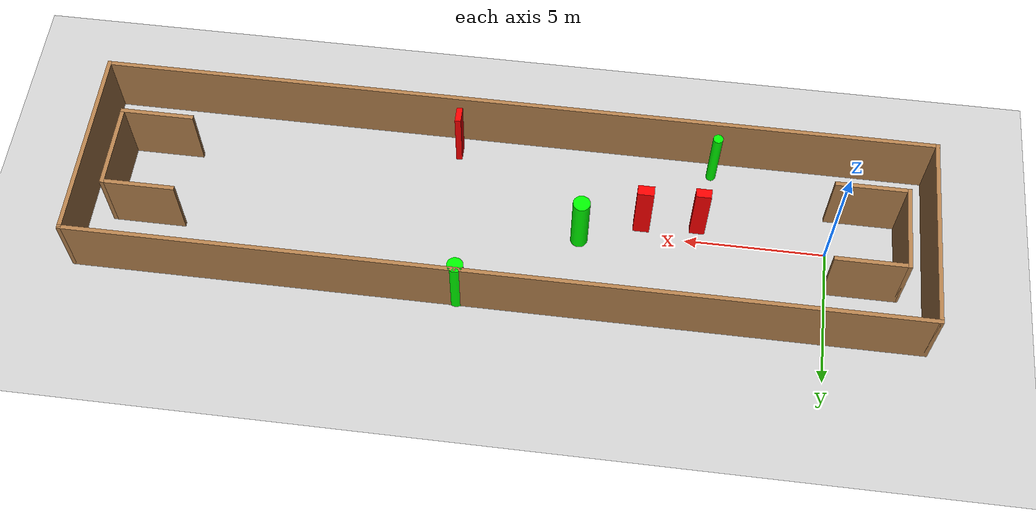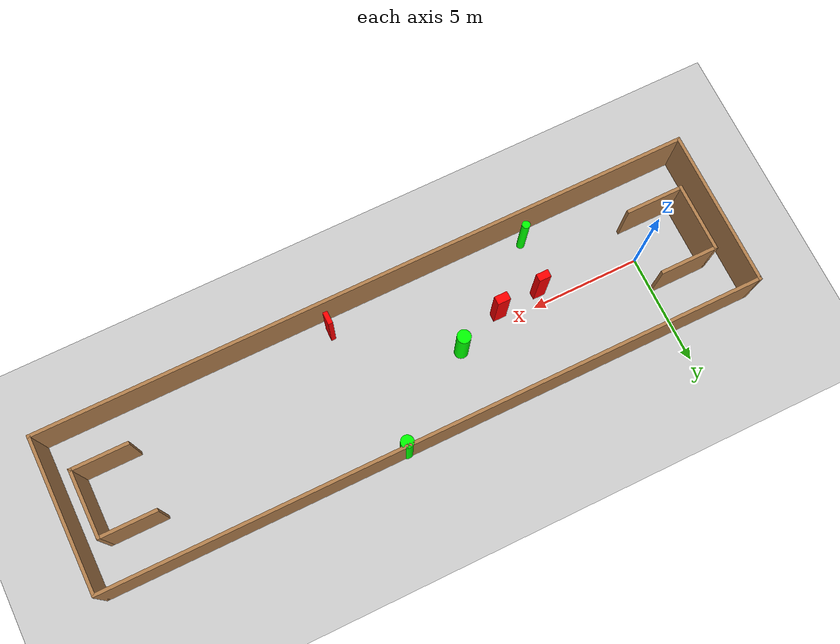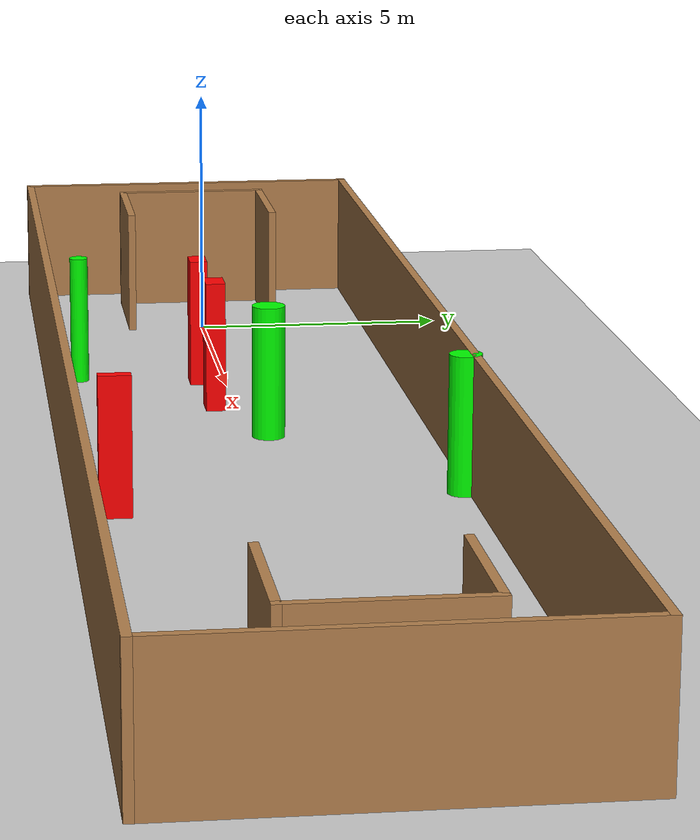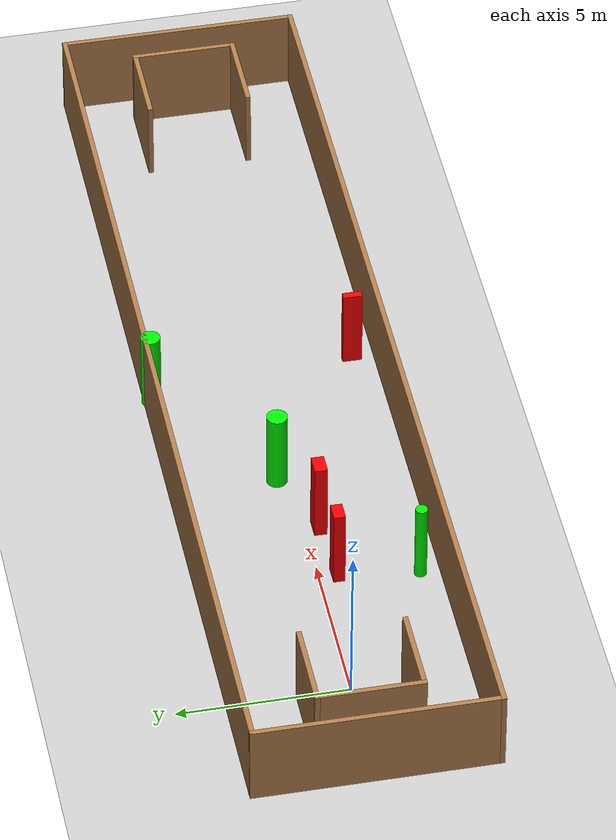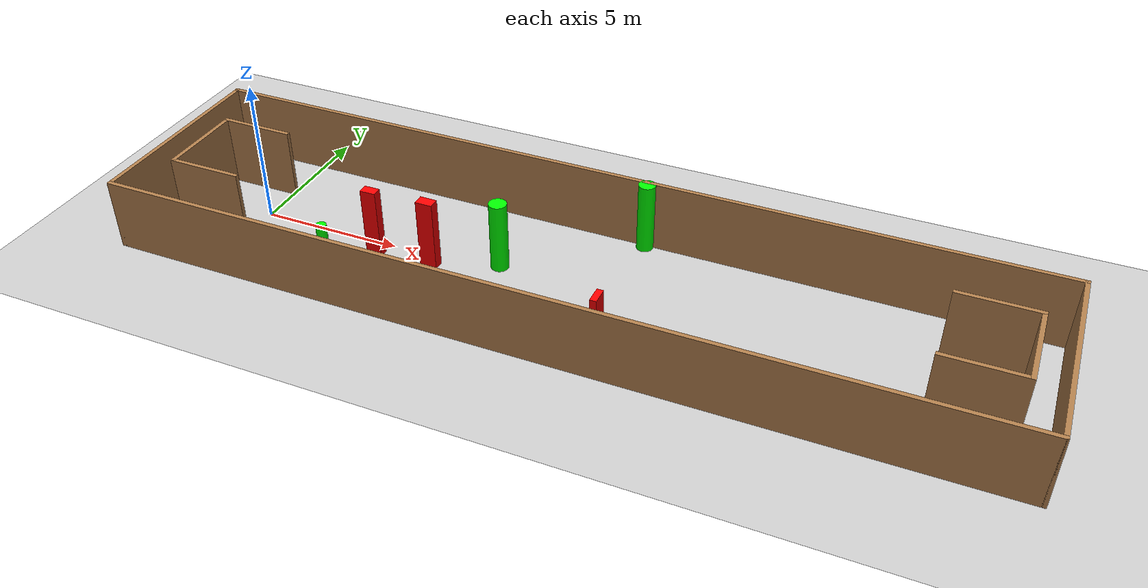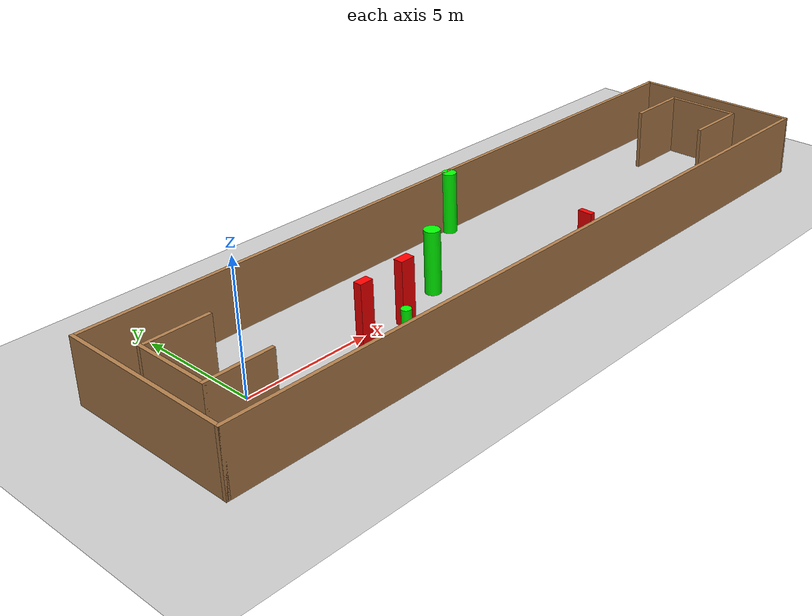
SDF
<sdf version="1.7">
 <world name="default">
  <light name="sun" type="directional">
   <pose>0 0 10 0 -0 0</pose>
   <diffuse>0.8 0.8 0.8 1</diffuse>
   <specular>0.2 0.2 0.2 1</specular>
   <attenuation>
    <range>1000</range>
    <constant>0.9</constant>
    <linear>0.01</linear>
    <quadratic>0.001</quadratic>
   </attenuation>
   <direction>-0.5 0.1 -0.9</direction>
   <spot><inner_angle>0</inner_angle><outer_angle>0</outer_angle><falloff>0</falloff></spot>
  </light>
  <model name="ground_plane">
   <static>1</static>
   <link name="link">
    <collision name="collision">
     <geometry><plane><normal>0 0 1</normal><size>100 100</size></plane></geometry>
     <surface>
      <contact><collide_bitmask>65535</collide_bitmask></contact>
      <friction><ode><mu>100</mu><mu2>50</mu2></ode></friction>
     </surface>
    </collision>
    <visual name="visual">
     <cast_shadows>0</cast_shadows>
     <geometry><plane><normal>0 0 1</normal><size>100 100</size></plane></geometry>
     <material>
      <script><uri>file://media/materials/scripts/gazebo.material</uri><name>Gazebo/Grey</name></script>
     </material>
    </visual>
   </link>
  </model>
  <gravity>0 0 -9.8</gravity>
  <magnetic_field>6e-06 2.3e-05 -4.2e-05</magnetic_field>
  <atmosphere type="adiabatic"/>
  <physics type="ode">
   <max_step_size>0.001</max_step_size>
   <real_time_factor>1</real_time_factor>
   <real_time_update_rate>1000</real_time_update_rate>
  </physics>
  <scene><ambient>0.4 0.4 0.4 1</ambient><background>0.7 0.7 0.7 1</background><shadows>1</shadows></scene>
  <spherical_coordinates>
   <surface_model>EARTH_WGS84</surface_model>
   <latitude_deg>0</latitude_deg>
   <longitude_deg>0</longitude_deg>
   <elevation>0</elevation>
   <heading_deg>0</heading_deg>
  </spherical_coordinates>
  <model name="my_base_walls">
   <link name="Wall_0">
    <collision name="Wall_0_Collision">
     <geometry><box><size>7.15 0.15 2.5</size></box></geometry>
     <pose>0 0 1.25 0 -0 0</pose>
    </collision>
    <visual name="Wall_0_Visual">
     <pose>0 0 1.25 0 -0 0</pose>
     <geometry><box><size>7.15 0.15 2.5</size></box></geometry>
     <material>
      <script><uri>file://media/materials/scripts/gazebo.material</uri><name>Gazebo/Wood</name></script>
      <ambient>1 1 1 1</ambient>
     </material>
     <meta><layer>0</layer></meta>
    </visual>
    <pose>-15 0 0 0 -0 1.5708</pose>
   </link>
   <link name="Wall_10">
    <collision name="Wall_10_Collision">
     <geometry><box><size>2.65 0.15 2.5</size></box></geometry>
     <pose>0 0 1.25 0 -0 0</pose>
    </collision>
    <visual name="Wall_10_Visual">
     <pose>0 0 1.25 0 -0 0</pose>
     <geometry><box><size>2.65 0.15 2.5</size></box></geometry>
     <material>
      <script><uri>file://media/materials/scripts/gazebo.material</uri><name>Gazebo/Wood</name></script>
      <ambient>1 1 1 1</ambient>
     </material>
     <meta><layer>0</layer></meta>
    </visual>
    <pose>-12.75 -1.5 0 0 -0 0</pose>
   </link>
   <link name="Wall_12">
    <collision name="Wall_12_Collision">
     <geometry><box><size>2.65 0.15 2.5</size></box></geometry>
     <pose>0 0 1.25 0 -0 0</pose>
    </collision>
    <visual name="Wall_12_Visual">
     <pose>0 0 1.25 0 -0 0</pose>
     <geometry><box><size>2.65 0.15 2.5</size></box></geometry>
     <material>
      <script><uri>file://media/materials/scripts/gazebo.material</uri><name>Gazebo/Wood</name></script>
      <ambient>1 1 1 1</ambient>
     </material>
     <meta><layer>0</layer></meta>
    </visual>
    <pose>-12.75 1.5 0 0 -0 0</pose>
   </link>
   <link name="Wall_14">
    <collision name="Wall_14_Collision">
     <geometry><box><size>3.15 0.15 2.5</size></box></geometry>
     <pose>0 0 1.25 0 -0 0</pose>
    </collision>
    <visual name="Wall_14_Visual">
     <pose>0 0 1.25 0 -0 0</pose>
     <geometry><box><size>3.15 0.15 2.5</size></box></geometry>
     <material>
      <script><uri>file://media/materials/scripts/gazebo.material</uri><name>Gazebo/Wood</name></script>
      <ambient>1 1 1 1</ambient>
     </material>
     <meta><layer>0</layer></meta>
    </visual>
    <pose>14 0 0 0 -0 -1.5708</pose>
   </link>
   <link name="Wall_15">
    <collision name="Wall_15_Collision">
     <geometry><box><size>2.65 0.15 2.5</size></box></geometry>
     <pose>0 0 1.25 0 -0 0</pose>
    </collision>
    <visual name="Wall_15_Visual">
     <pose>0 0 1.25 0 -0 0</pose>
     <geometry><box><size>2.65 0.15 2.5</size></box></geometry>
     <material>
      <script><uri>file://media/materials/scripts/gazebo.material</uri><name>Gazebo/Wood</name></script>
      <ambient>1 1 1 1</ambient>
     </material>
     <meta><layer>0</layer></meta>
    </visual>
    <pose>12.75 -1.5 0 0 -0 3.14159</pose>
   </link>
   <link name="Wall_17">
    <collision name="Wall_17_Collision">
     <geometry><box><size>2.65 0.15 2.5</size></box></geometry>
     <pose>0 0 1.25 0 -0 0</pose>
    </collision>
    <visual name="Wall_17_Visual">
     <pose>0 0 1.25 0 -0 0</pose>
     <geometry><box><size>2.65 0.15 2.5</size></box></geometry>
     <material>
      <script><uri>file://media/materials/scripts/gazebo.material</uri><name>Gazebo/Wood</name></script>
      <ambient>1 1 1 1</ambient>
     </material>
     <meta><layer>0</layer></meta>
    </visual>
    <pose>12.75 1.5 0 0 -0 3.14159</pose>
   </link>
   <link name="Wall_2">
    <collision name="Wall_2_Collision">
     <geometry><box><size>30.15 0.15 2.5</size></box></geometry>
     <pose>0 0 1.25 0 -0 0</pose>
    </collision>
    <visual name="Wall_2_Visual">
     <pose>0 0 1.25 0 -0 0</pose>
     <geometry><box><size>30.15 0.15 2.5</size></box></geometry>
     <material>
      <script><uri>file://media/materials/scripts/gazebo.material</uri><name>Gazebo/Wood</name></script>
      <ambient>1 1 1 1</ambient>
     </material>
     <meta><layer>0</layer></meta>
    </visual>
    <pose>-0 -3.5 0 0 -0 0</pose>
   </link>
   <link name="Wall_4">
    <collision name="Wall_4_Collision">
     <geometry><box><size>30.15 0.15 2.5</size></box></geometry>
     <pose>0 0 1.25 0 -0 0</pose>
    </collision>
    <visual name="Wall_4_Visual">
     <pose>0 0 1.25 0 -0 0</pose>
     <geometry><box><size>30.15 0.15 2.5</size></box></geometry>
     <material>
      <script><uri>file://media/materials/scripts/gazebo.material</uri><name>Gazebo/Wood</name></script>
      <ambient>1 1 1 1</ambient>
     </material>
     <meta><layer>0</layer></meta>
    </visual>
    <pose>-0 3.5 0 0 -0 0</pose>
   </link>
   <link name="Wall_6">
    <collision name="Wall_6_Collision">
     <geometry><box><size>7.15 0.15 2.5</size></box></geometry>
     <pose>0 0 1.25 0 -0 0</pose>
    </collision>
    <visual name="Wall_6_Visual">
     <pose>0 0 1.25 0 -0 0</pose>
     <geometry><box><size>7.15 0.15 2.5</size></box></geometry>
     <material>
      <script><uri>file://media/materials/scripts/gazebo.material</uri><name>Gazebo/Wood</name></script>
      <ambient>1 1 1 1</ambient>
     </material>
     <meta><layer>0</layer></meta>
    </visual>
    <pose>15 0 0 0 -0 -1.5708</pose>
   </link>
   <link name="Wall_9">
    <collision name="Wall_9_Collision">
     <geometry><box><size>3.15 0.15 2.5</size></box></geometry>
     <pose>0 0 1.25 0 -0 0</pose>
    </collision>
    <visual name="Wall_9_Visual">
     <pose>0 0 1.25 0 -0 0</pose>
     <geometry><box><size>3.15 0.15 2.5</size></box></geometry>
     <material>
      <script><uri>file://media/materials/scripts/gazebo.material</uri><name>Gazebo/Wood</name></script>
      <ambient>1 1 1 1</ambient>
     </material>
     <meta><layer>0</layer></meta>
    </visual>
    <pose>-14 0 0 0 -0 -1.5708</pose>
   </link>
   <static>1</static>
   <pose>11.5 0 0 0 -0 0</pose>
  </model>
  <model name="cylinder1">
   <static>1</static>
   <link name="link">
    <inertial>
     <mass>1</mass>
     <inertia><ixx>0.5</ixx><ixy>0</ixy><ixz>0</ixz><iyy>0.5</iyy><iyz>0</iyz><izz>1</izz></inertia>
    </inertial>
    <collision name="collision">
     <geometry><cylinder><radius>0.2898060669238655</radius><length>2.5</length></cylinder></geometry>
    </collision>
    <visual name="visual">
     <geometry><cylinder><radius>0.2898060669238655</radius><length>2.5</length></cylinder></geometry>
     <material>
      <ambient>0 1 0 1</ambient>
      <diffuse>0 1 0 1</diffuse>
      <specular>0.1 0.1 0.1 1</specular>
      <emissive>0 0 0 0</emissive>
     </material>
    </visual>
   </link>
   <pose>12.799052898894107 3.3379442938420496 1.25 0 0 0</pose>
  </model>
  <model name="cylinder2">
   <static>1</static>
   <link name="link">
    <inertial>
     <mass>1</mass>
     <inertia><ixx>0.5</ixx><ixy>0</ixy><ixz>0</ixz><iyy>0.5</iyy><iyz>0</iyz><izz>1</izz></inertia>
    </inertial>
    <collision name="collision">
     <geometry><cylinder><radius>0.1765596738134783</radius><length>2.5</length></cylinder></geometry>
    </collision>
    <visual name="visual">
     <geometry><cylinder><radius>0.1765596738134783</radius><length>2.5</length></cylinder></geometry>
     <material>
      <ambient>0 1 0 1</ambient>
      <diffuse>0 1 0 1</diffuse>
      <specular>0.1 0.1 0.1 1</specular>
      <emissive>0 0 0 0</emissive>
     </material>
    </visual>
   </link>
   <pose>4.219922994966755 -2.8600401013782544 1.25 0 0 0</pose>
  </model>
  <model name="cylinder3">
   <static>1</static>
   <link name="link">
    <inertial>
     <mass>1</mass>
     <inertia><ixx>0.5</ixx><ixy>0</ixy><ixz>0</ixz><iyy>0.5</iyy><iyz>0</iyz><izz>1</izz></inertia>
    </inertial>
    <collision name="collision">
     <geometry><cylinder><radius>0.3069132143235113</radius><length>2.5</length></cylinder></geometry>
    </collision>
    <visual name="visual">
     <geometry><cylinder><radius>0.3069132143235113</radius><length>2.5</length></cylinder></geometry>
     <material>
      <ambient>0 1 0 1</ambient>
      <diffuse>0 1 0 1</diffuse>
      <specular>0.1 0.1 0.1 1</specular>
      <emissive>0 0 0 0</emissive>
     </material>
    </visual>
   </link>
   <pose>8.772247814286256 0.3941179280446345 1.25 0 0 0</pose>
  </model>
  <model name="box1">
   <static>1</static>
   <link name="link">
    <inertial>
     <mass>1</mass>
     <inertia><ixx>0.083</ixx><ixy>0</ixy><ixz>0</ixz><iyy>0.083</iyy><iyz>0</iyz><izz>0.083</izz></inertia>
    </inertial>
    <collision name="collision">
     <geometry><box><size>0.5911833406064739 0.3745737841500967 2.5</size></box></geometry>
    </collision>
    <visual name="visual">
     <geometry><box><size>0.5911833406064739 0.3745737841500967 2.5</size></box></geometry>
     <material>
      <ambient>1 0 0 1</ambient>
      <diffuse>1 0 0 1</diffuse>
      <specular>0.1 0.1 0.1 1</specular>
      <emissive>0 0 0 0</emissive>
     </material>
    </visual>
    <sensor name="my_contact" type="contact">
     <contact><collision>box_collision</collision><topic>__default_topic__</topic></contact>
    </sensor>
   </link>
   <pose>6.5926574189537295 -0.39832445810567396 1.25 0 0 0</pose>
  </model>
  <model name="box2">
   <static>1</static>
   <link name="link">
    <inertial>
     <mass>1</mass>
     <inertia><ixx>0.083</ixx><ixy>0</ixy><ixz>0</ixz><iyy>0.083</iyy><iyz>0</iyz><izz>0.083</izz></inertia>
    </inertial>
    <collision name="collision">
     <geometry><box><size>0.21801747119859605 0.5723924069245876 2.5</size></box></geometry>
    </collision>
    <visual name="visual">
     <geometry><box><size>0.21801747119859605 0.5723924069245876 2.5</size></box></geometry>
     <material>
      <ambient>1 0 0 1</ambient>
      <diffuse>1 0 0 1</diffuse>
      <specular>0.1 0.1 0.1 1</specular>
      <emissive>0 0 0 0</emissive>
     </material>
    </visual>
    <sensor name="my_contact" type="contact">
     <contact><collision>box_collision</collision><topic>__default_topic__</topic></contact>
    </sensor>
   </link>
   <pose>13.506935088309504 -2.776969726250836 1.25 0 0 0</pose>
  </model>
  <model name="box3">
   <static>1</static>
   <link name="link">
    <inertial>
     <mass>1</mass>
     <inertia><ixx>0.083</ixx><ixy>0</ixy><ixz>0</ixz><iyy>0.083</iyy><iyz>0</iyz><izz>0.083</izz></inertia>
    </inertial>
    <collision name="collision">
     <geometry><box><size>0.5488203566803195 0.3379250673888391 2.5</size></box></geometry>
    </collision>
    <visual name="visual">
     <geometry><box><size>0.5488203566803195 0.3379250673888391 2.5</size></box></geometry>
     <material>
      <ambient>1 0 0 1</ambient>
      <diffuse>1 0 0 1</diffuse>
      <specular>0.1 0.1 0.1 1</specular>
      <emissive>0 0 0 0</emissive>
     </material>
    </visual>
    <sensor name="my_contact" type="contact">
     <contact><collision>box_collision</collision><topic>__default_topic__</topic></contact>
    </sensor>
   </link>
   <pose>4.589547102750396 -0.5319806182003495 1.25 0 0 0</pose>
  </model>
 </world>
</sdf>
